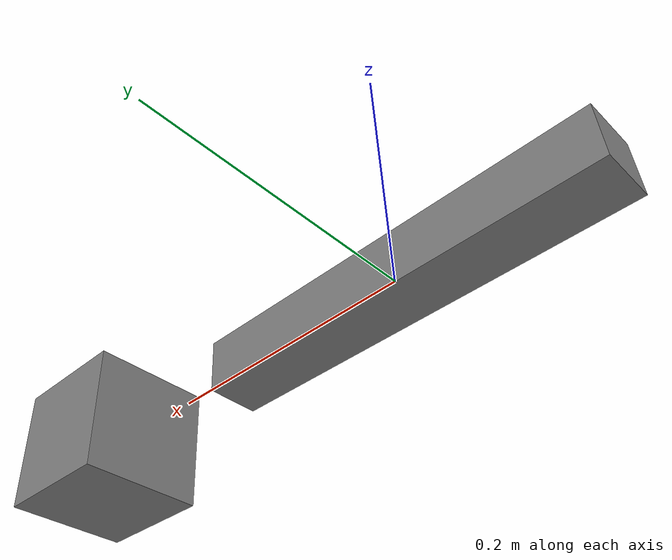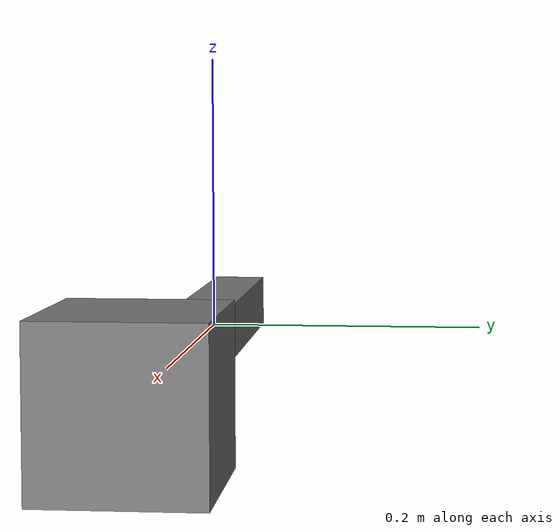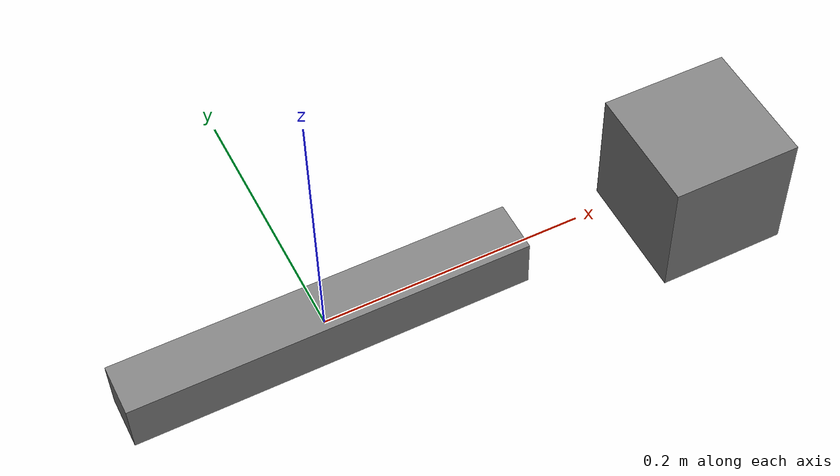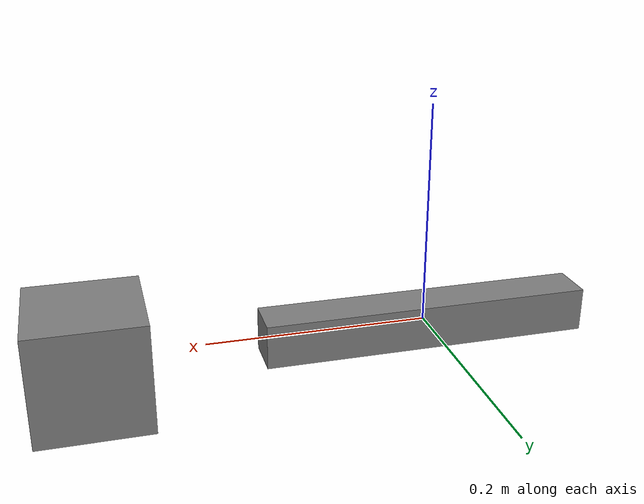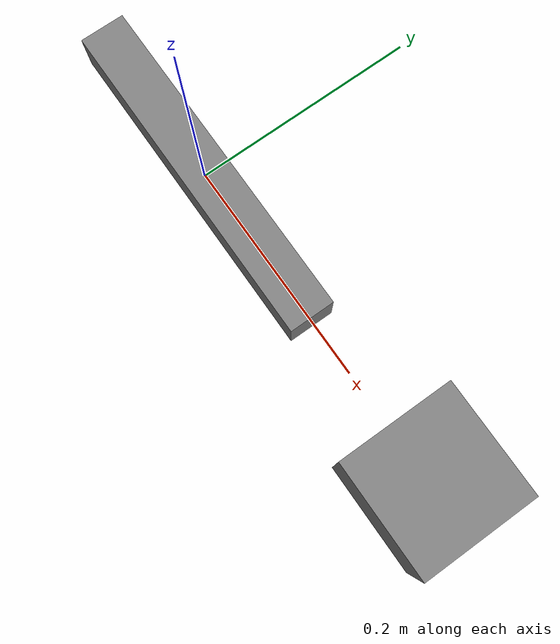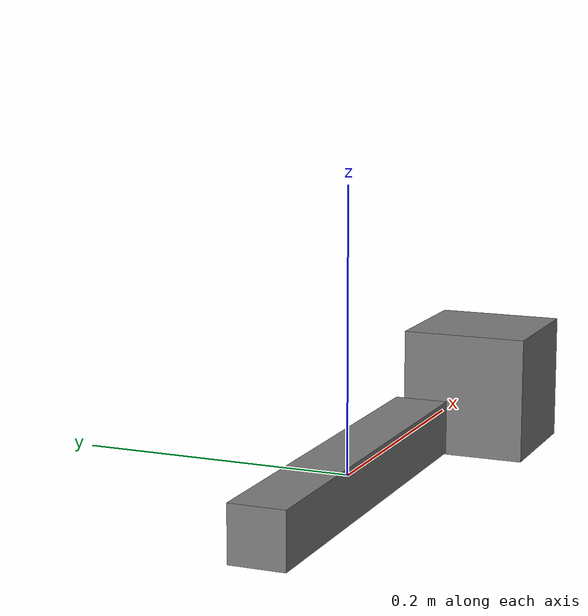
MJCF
<mujoco model="weld">
  <compiler angle="radian"/>
  <worldbody>
    <body name="arm">
      <joint name="spin" type="hinge" axis="0 0 1"/>
      <geom type="box" size="0.15 0.02 0.02" mass="1.0"/>
    </body>
    <body name="payload" pos="0.3 0 0">
      <freejoint/>
      <geom type="box" size="0.05 0.05 0.05" mass="0.5"/>
    </body>
  </worldbody>
  <equality>
    <weld body1="payload" body2="arm"/>
  </equality>
</mujoco>
